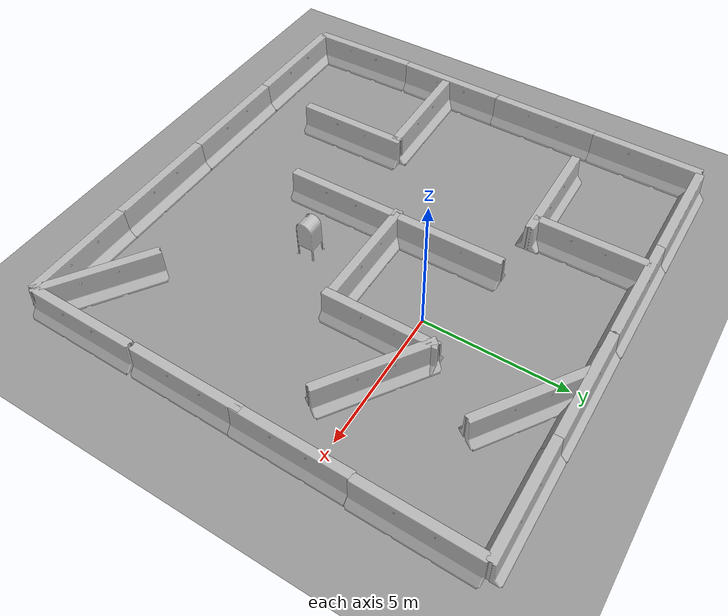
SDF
<sdf version="1.6">
 <world name="default">
  <light name="sun" type="directional">
   <pose>0 0 10 0 -0 0</pose>
   <diffuse>0.8 0.8 0.8 1</diffuse>
   <specular>0.2 0.2 0.2 1</specular>
   <attenuation>
    <range>1000</range>
    <constant>0.9</constant>
    <linear>0.01</linear>
    <quadratic>0.001</quadratic>
   </attenuation>
   <direction>0.5 0.1 -0.9</direction>
  </light>
  <scene><ambient>0.4 0.4 0.4 1</ambient><background>0.7 0.7 0.7 1</background><shadows>1</shadows></scene>
  <physics name="default_physics" default="0" type="ode">
   <max_step_size>0.01</max_step_size>
   <real_time_factor>1</real_time_factor>
   <real_time_update_rate>100</real_time_update_rate>
  </physics>
  <model name="ground_plane_0">
   <static>1</static>
   <link name="link">
    <collision name="collision">
     <geometry><plane><normal>0 0 1</normal><size>100 100</size></plane></geometry>
     <surface><friction><ode><mu>100</mu><mu2>50</mu2></ode></friction></surface>
    </collision>
    <visual name="visual">
     <cast_shadows>0</cast_shadows>
     <geometry><plane><normal>0 0 1</normal><size>100 100</size></plane></geometry>
     <material>
      <script><uri>file://media/materials/scripts/gazebo.material</uri><name>Gazebo/Grey</name></script>
     </material>
    </visual>
    <velocity_decay><linear>0</linear><angular>0</angular></velocity_decay>
   </link>
   <pose>0.497681 0 0 0 -0 0</pose>
  </model>
  <gravity>0 0 -9.8</gravity>
  <magnetic_field>6e-06 2.3e-05 -4.2e-05</magnetic_field>
  <atmosphere type="adiabatic"/>
  <spherical_coordinates>
   <surface_model>EARTH_WGS84</surface_model>
   <latitude_deg>0</latitude_deg>
   <longitude_deg>0</longitude_deg>
   <elevation>0</elevation>
   <heading_deg>0</heading_deg>
  </spherical_coordinates>
  <model name="jersey_barrier_0">
   <static>1</static>
   <link name="link">
    <visual name="visual">
     <geometry>
      <mesh><uri>model://jersey_barrier/meshes/jersey_barrier.dae</uri><scale>1 1 1</scale></mesh>
     </geometry>
    </visual>
    <collision name="upright">
     <pose>0 0 0.5715 0 -0 0</pose>
     <geometry><box><size>4.06542 0.3063 1.143</size></box></geometry>
    </collision>
    <collision name="base">
     <pose>0 0 0.032258 0 -0 0</pose>
     <geometry><box><size>4.06542 0.8107 0.064516</size></box></geometry>
    </collision>
    <collision name="base2">
     <pose>0 0 0.1 0 -0 0</pose>
     <geometry><box><size>4.06542 0.65 0.1</size></box></geometry>
    </collision>
    <collision name="base3">
     <pose>0 0 0.2 0 -0 0</pose>
     <geometry><box><size>4.06542 0.5 0.1</size></box></geometry>
    </collision>
    <collision name="left-angle">
     <pose>0 -0.224 0.2401 0.9 -0 0</pose>
     <geometry><box><size>4.06542 0.5 0.064516</size></box></geometry>
    </collision>
    <collision name="right-angle">
     <pose>0 0.224 0.2401 -0.9 0 0</pose>
     <geometry><box><size>4.06542 0.5 0.064516</size></box></geometry>
    </collision>
   </link>
   <pose>0.044913 -10.4917 0 0 -0 0</pose>
  </model>
  <model name="jersey_barrier_1">
   <static>1</static>
   <link name="link">
    <visual name="visual">
     <geometry>
      <mesh><uri>model://jersey_barrier/meshes/jersey_barrier.dae</uri><scale>1 1 1</scale></mesh>
     </geometry>
    </visual>
    <collision name="upright">
     <pose>0 0 0.5715 0 -0 0</pose>
     <geometry><box><size>4.06542 0.3063 1.143</size></box></geometry>
    </collision>
    <collision name="base">
     <pose>0 0 0.032258 0 -0 0</pose>
     <geometry><box><size>4.06542 0.8107 0.064516</size></box></geometry>
    </collision>
    <collision name="base2">
     <pose>0 0 0.1 0 -0 0</pose>
     <geometry><box><size>4.06542 0.65 0.1</size></box></geometry>
    </collision>
    <collision name="base3">
     <pose>0 0 0.2 0 -0 0</pose>
     <geometry><box><size>4.06542 0.5 0.1</size></box></geometry>
    </collision>
    <collision name="left-angle">
     <pose>0 -0.224 0.2401 0.9 -0 0</pose>
     <geometry><box><size>4.06542 0.5 0.064516</size></box></geometry>
    </collision>
    <collision name="right-angle">
     <pose>0 0.224 0.2401 -0.9 0 0</pose>
     <geometry><box><size>4.06542 0.5 0.064516</size></box></geometry>
    </collision>
   </link>
   <pose>3.93437 -10.4926 0 0 -0 0</pose>
  </model>
  <model name="jersey_barrier_1_clone_0">
   <static>1</static>
   <link name="link">
    <visual name="visual">
     <geometry>
      <mesh><uri>model://jersey_barrier/meshes/jersey_barrier.dae</uri><scale>1 1 1</scale></mesh>
     </geometry>
    </visual>
    <collision name="upright">
     <pose>0 0 0.5715 0 -0 0</pose>
     <geometry><box><size>4.06542 0.3063 1.143</size></box></geometry>
    </collision>
    <collision name="base">
     <pose>0 0 0.032258 0 -0 0</pose>
     <geometry><box><size>4.06542 0.8107 0.064516</size></box></geometry>
    </collision>
    <collision name="base2">
     <pose>0 0 0.1 0 -0 0</pose>
     <geometry><box><size>4.06542 0.65 0.1</size></box></geometry>
    </collision>
    <collision name="base3">
     <pose>0 0 0.2 0 -0 0</pose>
     <geometry><box><size>4.06542 0.5 0.1</size></box></geometry>
    </collision>
    <collision name="left-angle">
     <pose>0 -0.224 0.2401 0.9 -0 0</pose>
     <geometry><box><size>4.06542 0.5 0.064516</size></box></geometry>
    </collision>
    <collision name="right-angle">
     <pose>0 0.224 0.2401 -0.9 0 0</pose>
     <geometry><box><size>4.06542 0.5 0.064516</size></box></geometry>
    </collision>
   </link>
   <pose>-3.96775 -10.4974 0 0 -0 0</pose>
  </model>
  <model name="jersey_barrier_1_clone_1">
   <static>1</static>
   <link name="link">
    <visual name="visual">
     <geometry>
      <mesh><uri>model://jersey_barrier/meshes/jersey_barrier.dae</uri><scale>1 1 1</scale></mesh>
     </geometry>
    </visual>
    <collision name="upright">
     <pose>0 0 0.5715 0 -0 0</pose>
     <geometry><box><size>4.06542 0.3063 1.143</size></box></geometry>
    </collision>
    <collision name="base">
     <pose>0 0 0.032258 0 -0 0</pose>
     <geometry><box><size>4.06542 0.8107 0.064516</size></box></geometry>
    </collision>
    <collision name="base2">
     <pose>0 0 0.1 0 -0 0</pose>
     <geometry><box><size>4.06542 0.65 0.1</size></box></geometry>
    </collision>
    <collision name="base3">
     <pose>0 0 0.2 0 -0 0</pose>
     <geometry><box><size>4.06542 0.5 0.1</size></box></geometry>
    </collision>
    <collision name="left-angle">
     <pose>0 -0.224 0.2401 0.9 -0 0</pose>
     <geometry><box><size>4.06542 0.5 0.064516</size></box></geometry>
    </collision>
    <collision name="right-angle">
     <pose>0 0.224 0.2401 -0.9 0 0</pose>
     <geometry><box><size>4.06542 0.5 0.064516</size></box></geometry>
    </collision>
   </link>
   <pose>-7.97176 -10.4956 0 0 -0 0</pose>
  </model>
  <model name="jersey_barrier_1_clone_2">
   <static>1</static>
   <link name="link">
    <visual name="visual">
     <geometry>
      <mesh><uri>model://jersey_barrier/meshes/jersey_barrier.dae</uri><scale>1 1 1</scale></mesh>
     </geometry>
    </visual>
    <collision name="upright">
     <pose>0 0 0.5715 0 -0 0</pose>
     <geometry><box><size>4.06542 0.3063 1.143</size></box></geometry>
    </collision>
    <collision name="base">
     <pose>0 0 0.032258 0 -0 0</pose>
     <geometry><box><size>4.06542 0.8107 0.064516</size></box></geometry>
    </collision>
    <collision name="base2">
     <pose>0 0 0.1 0 -0 0</pose>
     <geometry><box><size>4.06542 0.65 0.1</size></box></geometry>
    </collision>
    <collision name="base3">
     <pose>0 0 0.2 0 -0 0</pose>
     <geometry><box><size>4.06542 0.5 0.1</size></box></geometry>
    </collision>
    <collision name="left-angle">
     <pose>0 -0.224 0.2401 0.9 -0 0</pose>
     <geometry><box><size>4.06542 0.5 0.064516</size></box></geometry>
    </collision>
    <collision name="right-angle">
     <pose>0 0.224 0.2401 -0.9 0 0</pose>
     <geometry><box><size>4.06542 0.5 0.064516</size></box></geometry>
    </collision>
   </link>
   <pose>-10.0738 -8.515 0 0 0 -1.55445</pose>
  </model>
  <model name="jersey_barrier_1_clone_2_clone">
   <static>1</static>
   <link name="link">
    <visual name="visual">
     <geometry>
      <mesh><uri>model://jersey_barrier/meshes/jersey_barrier.dae</uri><scale>1 1 1</scale></mesh>
     </geometry>
    </visual>
    <collision name="upright">
     <pose>0 0 0.5715 0 -0 0</pose>
     <geometry><box><size>4.06542 0.3063 1.143</size></box></geometry>
    </collision>
    <collision name="base">
     <pose>0 0 0.032258 0 -0 0</pose>
     <geometry><box><size>4.06542 0.8107 0.064516</size></box></geometry>
    </collision>
    <collision name="base2">
     <pose>0 0 0.1 0 -0 0</pose>
     <geometry><box><size>4.06542 0.65 0.1</size></box></geometry>
    </collision>
    <collision name="base3">
     <pose>0 0 0.2 0 -0 0</pose>
     <geometry><box><size>4.06542 0.5 0.1</size></box></geometry>
    </collision>
    <collision name="left-angle">
     <pose>0 -0.224 0.2401 0.9 -0 0</pose>
     <geometry><box><size>4.06542 0.5 0.064516</size></box></geometry>
    </collision>
    <collision name="right-angle">
     <pose>0 0.224 0.2401 -0.9 0 0</pose>
     <geometry><box><size>4.06542 0.5 0.064516</size></box></geometry>
    </collision>
   </link>
   <pose>-10.0721 -4.47903 0 0 0 -1.5814</pose>
  </model>
  <model name="jersey_barrier_1_clone_2_clone_0">
   <static>1</static>
   <link name="link">
    <visual name="visual">
     <geometry>
      <mesh><uri>model://jersey_barrier/meshes/jersey_barrier.dae</uri><scale>1 1 1</scale></mesh>
     </geometry>
    </visual>
    <collision name="upright">
     <pose>0 0 0.5715 0 -0 0</pose>
     <geometry><box><size>4.06542 0.3063 1.143</size></box></geometry>
    </collision>
    <collision name="base">
     <pose>0 0 0.032258 0 -0 0</pose>
     <geometry><box><size>4.06542 0.8107 0.064516</size></box></geometry>
    </collision>
    <collision name="base2">
     <pose>0 0 0.1 0 -0 0</pose>
     <geometry><box><size>4.06542 0.65 0.1</size></box></geometry>
    </collision>
    <collision name="base3">
     <pose>0 0 0.2 0 -0 0</pose>
     <geometry><box><size>4.06542 0.5 0.1</size></box></geometry>
    </collision>
    <collision name="left-angle">
     <pose>0 -0.224 0.2401 0.9 -0 0</pose>
     <geometry><box><size>4.06542 0.5 0.064516</size></box></geometry>
    </collision>
    <collision name="right-angle">
     <pose>0 0.224 0.2401 -0.9 0 0</pose>
     <geometry><box><size>4.06542 0.5 0.064516</size></box></geometry>
    </collision>
   </link>
   <pose>-10.0264 -0.525115 0 0 0 -1.5814</pose>
  </model>
  <model name="jersey_barrier_1_clone_2_clone_1">
   <static>1</static>
   <link name="link">
    <visual name="visual">
     <geometry>
      <mesh><uri>model://jersey_barrier/meshes/jersey_barrier.dae</uri><scale>1 1 1</scale></mesh>
     </geometry>
    </visual>
    <collision name="upright">
     <pose>0 0 0.5715 0 -0 0</pose>
     <geometry><box><size>4.06542 0.3063 1.143</size></box></geometry>
    </collision>
    <collision name="base">
     <pose>0 0 0.032258 0 -0 0</pose>
     <geometry><box><size>4.06542 0.8107 0.064516</size></box></geometry>
    </collision>
    <collision name="base2">
     <pose>0 0 0.1 0 -0 0</pose>
     <geometry><box><size>4.06542 0.65 0.1</size></box></geometry>
    </collision>
    <collision name="base3">
     <pose>0 0 0.2 0 -0 0</pose>
     <geometry><box><size>4.06542 0.5 0.1</size></box></geometry>
    </collision>
    <collision name="left-angle">
     <pose>0 -0.224 0.2401 0.9 -0 0</pose>
     <geometry><box><size>4.06542 0.5 0.064516</size></box></geometry>
    </collision>
    <collision name="right-angle">
     <pose>0 0.224 0.2401 -0.9 0 0</pose>
     <geometry><box><size>4.06542 0.5 0.064516</size></box></geometry>
    </collision>
   </link>
   <pose>-9.98287 3.46467 0 0 0 -1.5814</pose>
  </model>
  <model name="jersey_barrier_1_clone_1_clone">
   <static>1</static>
   <link name="link">
    <visual name="visual">
     <geometry>
      <mesh><uri>model://jersey_barrier/meshes/jersey_barrier.dae</uri><scale>1 1 1</scale></mesh>
     </geometry>
    </visual>
    <collision name="upright">
     <pose>0 0 0.5715 0 -0 0</pose>
     <geometry><box><size>4.06542 0.3063 1.143</size></box></geometry>
    </collision>
    <collision name="base">
     <pose>0 0 0.032258 0 -0 0</pose>
     <geometry><box><size>4.06542 0.8107 0.064516</size></box></geometry>
    </collision>
    <collision name="base2">
     <pose>0 0 0.1 0 -0 0</pose>
     <geometry><box><size>4.06542 0.65 0.1</size></box></geometry>
    </collision>
    <collision name="base3">
     <pose>0 0 0.2 0 -0 0</pose>
     <geometry><box><size>4.06542 0.5 0.1</size></box></geometry>
    </collision>
    <collision name="left-angle">
     <pose>0 -0.224 0.2401 0.9 -0 0</pose>
     <geometry><box><size>4.06542 0.5 0.064516</size></box></geometry>
    </collision>
    <collision name="right-angle">
     <pose>0 0.224 0.2401 -0.9 0 0</pose>
     <geometry><box><size>4.06542 0.5 0.064516</size></box></geometry>
    </collision>
   </link>
   <pose>-7.82894 5.43969 0 0 -0 0</pose>
  </model>
  <model name="jersey_barrier_1_clone_2_clone_3_clone_0">
   <static>1</static>
   <link name="link">
    <visual name="visual">
     <geometry>
      <mesh><uri>model://jersey_barrier/meshes/jersey_barrier.dae</uri><scale>1 1 1</scale></mesh>
     </geometry>
    </visual>
    <collision name="upright">
     <pose>0 0 0.5715 0 -0 0</pose>
     <geometry><box><size>4.06542 0.3063 1.143</size></box></geometry>
    </collision>
    <collision name="base">
     <pose>0 0 0.032258 0 -0 0</pose>
     <geometry><box><size>4.06542 0.8107 0.064516</size></box></geometry>
    </collision>
    <collision name="base2">
     <pose>0 0 0.1 0 -0 0</pose>
     <geometry><box><size>4.06542 0.65 0.1</size></box></geometry>
    </collision>
    <collision name="base3">
     <pose>0 0 0.2 0 -0 0</pose>
     <geometry><box><size>4.06542 0.5 0.1</size></box></geometry>
    </collision>
    <collision name="left-angle">
     <pose>0 -0.224 0.2401 0.9 -0 0</pose>
     <geometry><box><size>4.06542 0.5 0.064516</size></box></geometry>
    </collision>
    <collision name="right-angle">
     <pose>0 0.224 0.2401 -0.9 0 0</pose>
     <geometry><box><size>4.06542 0.5 0.064516</size></box></geometry>
    </collision>
   </link>
   <pose>5.9648 -4.34279 0 0 0 -1.5814</pose>
  </model>
  <model name="jersey_barrier_1_clone_2_clone_3_clone_1">
   <static>1</static>
   <link name="link">
    <visual name="visual">
     <geometry>
      <mesh><uri>model://jersey_barrier/meshes/jersey_barrier.dae</uri><scale>1 1 1</scale></mesh>
     </geometry>
    </visual>
    <collision name="upright">
     <pose>0 0 0.5715 0 -0 0</pose>
     <geometry><box><size>4.06542 0.3063 1.143</size></box></geometry>
    </collision>
    <collision name="base">
     <pose>0 0 0.032258 0 -0 0</pose>
     <geometry><box><size>4.06542 0.8107 0.064516</size></box></geometry>
    </collision>
    <collision name="base2">
     <pose>0 0 0.1 0 -0 0</pose>
     <geometry><box><size>4.06542 0.65 0.1</size></box></geometry>
    </collision>
    <collision name="base3">
     <pose>0 0 0.2 0 -0 0</pose>
     <geometry><box><size>4.06542 0.5 0.1</size></box></geometry>
    </collision>
    <collision name="left-angle">
     <pose>0 -0.224 0.2401 0.9 -0 0</pose>
     <geometry><box><size>4.06542 0.5 0.064516</size></box></geometry>
    </collision>
    <collision name="right-angle">
     <pose>0 0.224 0.2401 -0.9 0 0</pose>
     <geometry><box><size>4.06542 0.5 0.064516</size></box></geometry>
    </collision>
   </link>
   <pose>6.0186 -0.664457 0 0 0 -1.5814</pose>
  </model>
  <model name="jersey_barrier_1_clone_1_clone_clone_2_clone_0">
   <static>1</static>
   <link name="link">
    <visual name="visual">
     <geometry>
      <mesh><uri>model://jersey_barrier/meshes/jersey_barrier.dae</uri><scale>1 1 1</scale></mesh>
     </geometry>
    </visual>
    <collision name="upright">
     <pose>0 0 0.5715 0 -0 0</pose>
     <geometry><box><size>4.06542 0.3063 1.143</size></box></geometry>
    </collision>
    <collision name="base">
     <pose>0 0 0.032258 0 -0 0</pose>
     <geometry><box><size>4.06542 0.8107 0.064516</size></box></geometry>
    </collision>
    <collision name="base2">
     <pose>0 0 0.1 0 -0 0</pose>
     <geometry><box><size>4.06542 0.65 0.1</size></box></geometry>
    </collision>
    <collision name="base3">
     <pose>0 0 0.2 0 -0 0</pose>
     <geometry><box><size>4.06542 0.5 0.1</size></box></geometry>
    </collision>
    <collision name="left-angle">
     <pose>0 -0.224 0.2401 0.9 -0 0</pose>
     <geometry><box><size>4.06542 0.5 0.064516</size></box></geometry>
    </collision>
    <collision name="right-angle">
     <pose>0 0.224 0.2401 -0.9 0 0</pose>
     <geometry><box><size>4.06542 0.5 0.064516</size></box></geometry>
    </collision>
   </link>
   <pose>-0.833651 -2.57885 0 0 -0 0</pose>
  </model>
  <model name="jersey_barrier_1_clone_1_clone_clone_2_clone_0_clone_0">
   <static>1</static>
   <link name="link">
    <visual name="visual">
     <geometry>
      <mesh><uri>model://jersey_barrier/meshes/jersey_barrier.dae</uri><scale>1 1 1</scale></mesh>
     </geometry>
    </visual>
    <collision name="upright">
     <pose>0 0 0.5715 0 -0 0</pose>
     <geometry><box><size>4.06542 0.3063 1.143</size></box></geometry>
    </collision>
    <collision name="base">
     <pose>0 0 0.032258 0 -0 0</pose>
     <geometry><box><size>4.06542 0.8107 0.064516</size></box></geometry>
    </collision>
    <collision name="base2">
     <pose>0 0 0.1 0 -0 0</pose>
     <geometry><box><size>4.06542 0.65 0.1</size></box></geometry>
    </collision>
    <collision name="base3">
     <pose>0 0 0.2 0 -0 0</pose>
     <geometry><box><size>4.06542 0.5 0.1</size></box></geometry>
    </collision>
    <collision name="left-angle">
     <pose>0 -0.224 0.2401 0.9 -0 0</pose>
     <geometry><box><size>4.06542 0.5 0.064516</size></box></geometry>
    </collision>
    <collision name="right-angle">
     <pose>0 0.224 0.2401 -0.9 0 0</pose>
     <geometry><box><size>4.06542 0.5 0.064516</size></box></geometry>
    </collision>
   </link>
   <pose>4.20657 5.41196 0 0 -0 0</pose>
  </model>
  <model name="jersey_barrier_1_clone_1_clone_clone_2_clone_0_clone_1">
   <static>1</static>
   <link name="link">
    <visual name="visual">
     <geometry>
      <mesh><uri>model://jersey_barrier/meshes/jersey_barrier.dae</uri><scale>1 1 1</scale></mesh>
     </geometry>
    </visual>
    <collision name="upright">
     <pose>0 0 0.5715 0 -0 0</pose>
     <geometry><box><size>4.06542 0.3063 1.143</size></box></geometry>
    </collision>
    <collision name="base">
     <pose>0 0 0.032258 0 -0 0</pose>
     <geometry><box><size>4.06542 0.8107 0.064516</size></box></geometry>
    </collision>
    <collision name="base2">
     <pose>0 0 0.1 0 -0 0</pose>
     <geometry><box><size>4.06542 0.65 0.1</size></box></geometry>
    </collision>
    <collision name="base3">
     <pose>0 0 0.2 0 -0 0</pose>
     <geometry><box><size>4.06542 0.5 0.1</size></box></geometry>
    </collision>
    <collision name="left-angle">
     <pose>0 -0.224 0.2401 0.9 -0 0</pose>
     <geometry><box><size>4.06542 0.5 0.064516</size></box></geometry>
    </collision>
    <collision name="right-angle">
     <pose>0 0.224 0.2401 -0.9 0 0</pose>
     <geometry><box><size>4.06542 0.5 0.064516</size></box></geometry>
    </collision>
   </link>
   <pose>-3.85367 5.42903 0 0 -0 0</pose>
  </model>
  <model name="jersey_barrier_1_clone_1_clone_clone_2_clone_0_clone_2">
   <static>1</static>
   <link name="link">
    <visual name="visual">
     <geometry>
      <mesh><uri>model://jersey_barrier/meshes/jersey_barrier.dae</uri><scale>1 1 1</scale></mesh>
     </geometry>
    </visual>
    <collision name="upright">
     <pose>0 0 0.5715 0 -0 0</pose>
     <geometry><box><size>4.06542 0.3063 1.143</size></box></geometry>
    </collision>
    <collision name="base">
     <pose>0 0 0.032258 0 -0 0</pose>
     <geometry><box><size>4.06542 0.8107 0.064516</size></box></geometry>
    </collision>
    <collision name="base2">
     <pose>0 0 0.1 0 -0 0</pose>
     <geometry><box><size>4.06542 0.65 0.1</size></box></geometry>
    </collision>
    <collision name="base3">
     <pose>0 0 0.2 0 -0 0</pose>
     <geometry><box><size>4.06542 0.5 0.1</size></box></geometry>
    </collision>
    <collision name="left-angle">
     <pose>0 -0.224 0.2401 0.9 -0 0</pose>
     <geometry><box><size>4.06542 0.5 0.064516</size></box></geometry>
    </collision>
    <collision name="right-angle">
     <pose>0 0.224 0.2401 -0.9 0 0</pose>
     <geometry><box><size>4.06542 0.5 0.064516</size></box></geometry>
    </collision>
   </link>
   <pose>0.204823 5.4248 0 0 -0 0</pose>
  </model>
  <model name="jersey_barrier_1_clone_2_clone_2_clone">
   <static>1</static>
   <link name="link">
    <visual name="visual">
     <geometry>
      <mesh><uri>model://jersey_barrier/meshes/jersey_barrier.dae</uri><scale>1 1 1</scale></mesh>
     </geometry>
    </visual>
    <collision name="upright">
     <pose>0 0 0.5715 0 -0 0</pose>
     <geometry><box><size>4.06542 0.3063 1.143</size></box></geometry>
    </collision>
    <collision name="base">
     <pose>0 0 0.032258 0 -0 0</pose>
     <geometry><box><size>4.06542 0.8107 0.064516</size></box></geometry>
    </collision>
    <collision name="base2">
     <pose>0 0 0.1 0 -0 0</pose>
     <geometry><box><size>4.06542 0.65 0.1</size></box></geometry>
    </collision>
    <collision name="base3">
     <pose>0 0 0.2 0 -0 0</pose>
     <geometry><box><size>4.06542 0.5 0.1</size></box></geometry>
    </collision>
    <collision name="left-angle">
     <pose>0 -0.224 0.2401 0.9 -0 0</pose>
     <geometry><box><size>4.06542 0.5 0.064516</size></box></geometry>
    </collision>
    <collision name="right-angle">
     <pose>0 0.224 0.2401 -0.9 0 0</pose>
     <geometry><box><size>4.06542 0.5 0.064516</size></box></geometry>
    </collision>
   </link>
   <pose>6.10803 3.31897 0 0 0 -1.5814</pose>
  </model>
  <model name="jersey_barrier_1_clone_2_clone_2_clone_0">
   <static>1</static>
   <link name="link">
    <visual name="visual">
     <geometry>
      <mesh><uri>model://jersey_barrier/meshes/jersey_barrier.dae</uri><scale>1 1 1</scale></mesh>
     </geometry>
    </visual>
    <collision name="upright">
     <pose>0 0 0.5715 0 -0 0</pose>
     <geometry><box><size>4.06542 0.3063 1.143</size></box></geometry>
    </collision>
    <collision name="base">
     <pose>0 0 0.032258 0 -0 0</pose>
     <geometry><box><size>4.06542 0.8107 0.064516</size></box></geometry>
    </collision>
    <collision name="base2">
     <pose>0 0 0.1 0 -0 0</pose>
     <geometry><box><size>4.06542 0.65 0.1</size></box></geometry>
    </collision>
    <collision name="base3">
     <pose>0 0 0.2 0 -0 0</pose>
     <geometry><box><size>4.06542 0.5 0.1</size></box></geometry>
    </collision>
    <collision name="left-angle">
     <pose>0 -0.224 0.2401 0.9 -0 0</pose>
     <geometry><box><size>4.06542 0.5 0.064516</size></box></geometry>
    </collision>
    <collision name="right-angle">
     <pose>0 0.224 0.2401 -0.9 0 0</pose>
     <geometry><box><size>4.06542 0.5 0.064516</size></box></geometry>
    </collision>
   </link>
   <pose>5.9329 -8.48199 0 0 0 -1.5814</pose>
  </model>
  <model name="jersey_barrier_clone_0">
   <static>1</static>
   <link name="link">
    <visual name="visual">
     <geometry>
      <mesh><uri>model://jersey_barrier/meshes/jersey_barrier.dae</uri><scale>1 1 1</scale></mesh>
     </geometry>
    </visual>
    <collision name="upright">
     <pose>0 0 0.5715 0 -0 0</pose>
     <geometry><box><size>4.06542 0.3063 1.143</size></box></geometry>
    </collision>
    <collision name="base">
     <pose>0 0 0.032258 0 -0 0</pose>
     <geometry><box><size>4.06542 0.8107 0.064516</size></box></geometry>
    </collision>
    <collision name="base2">
     <pose>0 0 0.1 0 -0 0</pose>
     <geometry><box><size>4.06542 0.65 0.1</size></box></geometry>
    </collision>
    <collision name="base3">
     <pose>0 0 0.2 0 -0 0</pose>
     <geometry><box><size>4.06542 0.5 0.1</size></box></geometry>
    </collision>
    <collision name="left-angle">
     <pose>0 -0.224 0.2401 0.9 -0 0</pose>
     <geometry><box><size>4.06542 0.5 0.064516</size></box></geometry>
    </collision>
    <collision name="right-angle">
     <pose>0 0.224 0.2401 -0.9 0 0</pose>
     <geometry><box><size>4.06542 0.5 0.064516</size></box></geometry>
    </collision>
    <velocity_decay><linear>0</linear><angular>0</angular></velocity_decay>
   </link>
   <pose>-7.87945 -4.60001 0 0 -0 0.025873</pose>
  </model>
  <model name="jersey_barrier_1_clone_1_clone_clone_2_clone_clone">
   <static>1</static>
   <link name="link">
    <visual name="visual">
     <geometry>
      <mesh><uri>model://jersey_barrier/meshes/jersey_barrier.dae</uri><scale>1 1 1</scale></mesh>
     </geometry>
    </visual>
    <collision name="upright">
     <pose>0 0 0.5715 0 -0 0</pose>
     <geometry><box><size>4.06542 0.3063 1.143</size></box></geometry>
    </collision>
    <collision name="base">
     <pose>0 0 0.032258 0 -0 0</pose>
     <geometry><box><size>4.06542 0.8107 0.064516</size></box></geometry>
    </collision>
    <collision name="base2">
     <pose>0 0 0.1 0 -0 0</pose>
     <geometry><box><size>4.06542 0.65 0.1</size></box></geometry>
    </collision>
    <collision name="base3">
     <pose>0 0 0.2 0 -0 0</pose>
     <geometry><box><size>4.06542 0.5 0.1</size></box></geometry>
    </collision>
    <collision name="left-angle">
     <pose>0 -0.224 0.2401 0.9 -0 0</pose>
     <geometry><box><size>4.06542 0.5 0.064516</size></box></geometry>
    </collision>
    <collision name="right-angle">
     <pose>0 0.224 0.2401 -0.9 0 0</pose>
     <geometry><box><size>4.06542 0.5 0.064516</size></box></geometry>
    </collision>
   </link>
   <pose>-2.61262 -0.626881 0 0 0 -1.56872</pose>
  </model>
  <model name="jersey_barrier_1_clone_1_clone_clone_2_clone_clone_clone">
   <static>1</static>
   <link name="link">
    <visual name="visual">
     <geometry>
      <mesh><uri>model://jersey_barrier/meshes/jersey_barrier.dae</uri><scale>1 1 1</scale></mesh>
     </geometry>
    </visual>
    <collision name="upright">
     <pose>0 0 0.5715 0 -0 0</pose>
     <geometry><box><size>4.06542 0.3063 1.143</size></box></geometry>
    </collision>
    <collision name="base">
     <pose>0 0 0.032258 0 -0 0</pose>
     <geometry><box><size>4.06542 0.8107 0.064516</size></box></geometry>
    </collision>
    <collision name="base2">
     <pose>0 0 0.1 0 -0 0</pose>
     <geometry><box><size>4.06542 0.65 0.1</size></box></geometry>
    </collision>
    <collision name="base3">
     <pose>0 0 0.2 0 -0 0</pose>
     <geometry><box><size>4.06542 0.5 0.1</size></box></geometry>
    </collision>
    <collision name="left-angle">
     <pose>0 -0.224 0.2401 0.9 -0 0</pose>
     <geometry><box><size>4.06542 0.5 0.064516</size></box></geometry>
    </collision>
    <collision name="right-angle">
     <pose>0 0.224 0.2401 -0.9 0 0</pose>
     <geometry><box><size>4.06542 0.5 0.064516</size></box></geometry>
    </collision>
   </link>
   <pose>-5.87437 -6.37913 0 0 0 -1.56872</pose>
  </model>
  <model name="jersey_barrier_1_clone_1_clone_clone_2_clone_clone_clone_0">
   <static>1</static>
   <link name="link">
    <visual name="visual">
     <geometry>
      <mesh><uri>model://jersey_barrier/meshes/jersey_barrier.dae</uri><scale>1 1 1</scale></mesh>
     </geometry>
    </visual>
    <collision name="upright">
     <pose>0 0 0.5715 0 -0 0</pose>
     <geometry><box><size>4.06542 0.3063 1.143</size></box></geometry>
    </collision>
    <collision name="base">
     <pose>0 0 0.032258 0 -0 0</pose>
     <geometry><box><size>4.06542 0.8107 0.064516</size></box></geometry>
    </collision>
    <collision name="base2">
     <pose>0 0 0.1 0 -0 0</pose>
     <geometry><box><size>4.06542 0.65 0.1</size></box></geometry>
    </collision>
    <collision name="base3">
     <pose>0 0 0.2 0 -0 0</pose>
     <geometry><box><size>4.06542 0.5 0.1</size></box></geometry>
    </collision>
    <collision name="left-angle">
     <pose>0 -0.224 0.2401 0.9 -0 0</pose>
     <geometry><box><size>4.06542 0.5 0.064516</size></box></geometry>
    </collision>
    <collision name="right-angle">
     <pose>0 0.224 0.2401 -0.9 0 0</pose>
     <geometry><box><size>4.06542 0.5 0.064516</size></box></geometry>
    </collision>
   </link>
   <pose>-2.63232 -4.67409 0 0 0 -1.56872</pose>
  </model>
  <model name="jersey_barrier_1_clone_1_clone_clone_2_clone_clone_clone_1">
   <static>1</static>
   <link name="link">
    <visual name="visual">
     <geometry>
      <mesh><uri>model://jersey_barrier/meshes/jersey_barrier.dae</uri><scale>1 1 1</scale></mesh>
     </geometry>
    </visual>
    <collision name="upright">
     <pose>0 0 0.5715 0 -0 0</pose>
     <geometry><box><size>4.06542 0.3063 1.143</size></box></geometry>
    </collision>
    <collision name="base">
     <pose>0 0 0.032258 0 -0 0</pose>
     <geometry><box><size>4.06542 0.8107 0.064516</size></box></geometry>
    </collision>
    <collision name="base2">
     <pose>0 0 0.1 0 -0 0</pose>
     <geometry><box><size>4.06542 0.65 0.1</size></box></geometry>
    </collision>
    <collision name="base3">
     <pose>0 0 0.2 0 -0 0</pose>
     <geometry><box><size>4.06542 0.5 0.1</size></box></geometry>
    </collision>
    <collision name="left-angle">
     <pose>0 -0.224 0.2401 0.9 -0 0</pose>
     <geometry><box><size>4.06542 0.5 0.064516</size></box></geometry>
    </collision>
    <collision name="right-angle">
     <pose>0 0.224 0.2401 -0.9 0 0</pose>
     <geometry><box><size>4.06542 0.5 0.064516</size></box></geometry>
    </collision>
   </link>
   <pose>1.30835 -0.775591 0 0 0 -1.56872</pose>
  </model>
  <model name="jersey_barrier_1_clone_1_clone_clone_2_clone_clone_clone_2">
   <static>1</static>
   <link name="link">
    <visual name="visual">
     <geometry>
      <mesh><uri>model://jersey_barrier/meshes/jersey_barrier.dae</uri><scale>1 1 1</scale></mesh>
     </geometry>
    </visual>
    <collision name="upright">
     <pose>0 0 0.5715 0 -0 0</pose>
     <geometry><box><size>4.06542 0.3063 1.143</size></box></geometry>
    </collision>
    <collision name="base">
     <pose>0 0 0.032258 0 -0 0</pose>
     <geometry><box><size>4.06542 0.8107 0.064516</size></box></geometry>
    </collision>
    <collision name="base2">
     <pose>0 0 0.1 0 -0 0</pose>
     <geometry><box><size>4.06542 0.65 0.1</size></box></geometry>
    </collision>
    <collision name="base3">
     <pose>0 0 0.2 0 -0 0</pose>
     <geometry><box><size>4.06542 0.5 0.1</size></box></geometry>
    </collision>
    <collision name="left-angle">
     <pose>0 -0.224 0.2401 0.9 -0 0</pose>
     <geometry><box><size>4.06542 0.5 0.064516</size></box></geometry>
    </collision>
    <collision name="right-angle">
     <pose>0 0.224 0.2401 -0.9 0 0</pose>
     <geometry><box><size>4.06542 0.5 0.064516</size></box></geometry>
    </collision>
   </link>
   <pose>-4.94742 3.41321 0 0 0 -1.56872</pose>
  </model>
  <model name="jersey_barrier_1_clone_1_clone_clone_2_clone_clone_clone_3">
   <static>1</static>
   <link name="link">
    <visual name="visual">
     <geometry>
      <mesh><uri>model://jersey_barrier/meshes/jersey_barrier.dae</uri><scale>1 1 1</scale></mesh>
     </geometry>
    </visual>
    <collision name="upright">
     <pose>0 0 0.5715 0 -0 0</pose>
     <geometry><box><size>4.06542 0.3063 1.143</size></box></geometry>
    </collision>
    <collision name="base">
     <pose>0 0 0.032258 0 -0 0</pose>
     <geometry><box><size>4.06542 0.8107 0.064516</size></box></geometry>
    </collision>
    <collision name="base2">
     <pose>0 0 0.1 0 -0 0</pose>
     <geometry><box><size>4.06542 0.65 0.1</size></box></geometry>
    </collision>
    <collision name="base3">
     <pose>0 0 0.2 0 -0 0</pose>
     <geometry><box><size>4.06542 0.5 0.1</size></box></geometry>
    </collision>
    <collision name="left-angle">
     <pose>0 -0.224 0.2401 0.9 -0 0</pose>
     <geometry><box><size>4.06542 0.5 0.064516</size></box></geometry>
    </collision>
    <collision name="right-angle">
     <pose>0 0.224 0.2401 -0.9 0 0</pose>
     <geometry><box><size>4.06542 0.5 0.064516</size></box></geometry>
    </collision>
   </link>
   <pose>-6.40528 1.44528 0 0 -0 0.016714</pose>
  </model>
  <model name="postbox">
   <static>1</static>
   <link name="link">
    <collision name="collision">
     <geometry><mesh><uri>model://postbox/meshes/postbox.dae</uri><scale>1 1 1</scale></mesh></geometry>
    </collision>
    <visual name="visual">
     <geometry><mesh><uri>model://postbox/meshes/postbox.dae</uri><scale>1 1 1</scale></mesh></geometry>
    </visual>
   </link>
   <pose>-0.603325 -4.69123 0 0 -0 0</pose>
  </model>
  <model name="jersey_barrier_1_clone_1_clone_clone_2_clone_clone_clone_clone">
   <static>1</static>
   <link name="link">
    <visual name="visual">
     <geometry>
      <mesh><uri>model://jersey_barrier/meshes/jersey_barrier.dae</uri><scale>1 1 1</scale></mesh>
     </geometry>
    </visual>
    <collision name="upright">
     <pose>0 0 0.5715 0 -0 0</pose>
     <geometry><box><size>4.06542 0.3063 1.143</size></box></geometry>
    </collision>
    <collision name="base">
     <pose>0 0 0.032258 0 -0 0</pose>
     <geometry><box><size>4.06542 0.8107 0.064516</size></box></geometry>
    </collision>
    <collision name="base2">
     <pose>0 0 0.1 0 -0 0</pose>
     <geometry><box><size>4.06542 0.65 0.1</size></box></geometry>
    </collision>
    <collision name="base3">
     <pose>0 0 0.2 0 -0 0</pose>
     <geometry><box><size>4.06542 0.5 0.1</size></box></geometry>
    </collision>
    <collision name="left-angle">
     <pose>0 -0.224 0.2401 0.9 -0 0</pose>
     <geometry><box><size>4.06542 0.5 0.064516</size></box></geometry>
    </collision>
    <collision name="right-angle">
     <pose>0 0.224 0.2401 -0.9 0 0</pose>
     <geometry><box><size>4.06542 0.5 0.064516</size></box></geometry>
    </collision>
   </link>
   <pose>4.33762 -9.33328 0 0 0 -0.603838</pose>
  </model>
  <model name="jersey_barrier_1_clone_1_clone_clone_2_clone_clone_clone_clone_clone">
   <static>1</static>
   <link name="link">
    <visual name="visual">
     <geometry>
      <mesh><uri>model://jersey_barrier/meshes/jersey_barrier.dae</uri><scale>1 1 1</scale></mesh>
     </geometry>
    </visual>
    <collision name="upright">
     <pose>0 0 0.5715 0 -0 0</pose>
     <geometry><box><size>4.06542 0.3063 1.143</size></box></geometry>
    </collision>
    <collision name="base">
     <pose>0 0 0.032258 0 -0 0</pose>
     <geometry><box><size>4.06542 0.8107 0.064516</size></box></geometry>
    </collision>
    <collision name="base2">
     <pose>0 0 0.1 0 -0 0</pose>
     <geometry><box><size>4.06542 0.65 0.1</size></box></geometry>
    </collision>
    <collision name="base3">
     <pose>0 0 0.2 0 -0 0</pose>
     <geometry><box><size>4.06542 0.5 0.1</size></box></geometry>
    </collision>
    <collision name="left-angle">
     <pose>0 -0.224 0.2401 0.9 -0 0</pose>
     <geometry><box><size>4.06542 0.5 0.064516</size></box></geometry>
    </collision>
    <collision name="right-angle">
     <pose>0 0.224 0.2401 -0.9 0 0</pose>
     <geometry><box><size>4.06542 0.5 0.064516</size></box></geometry>
    </collision>
   </link>
   <pose>2.80445 -0.04034 0 0 0 -0.603838</pose>
  </model>
  <model name="jersey_barrier_1_clone_1_clone_clone_2_clone_clone_clone_clone_clone_0">
   <static>1</static>
   <link name="link">
    <visual name="visual">
     <geometry>
      <mesh><uri>model://jersey_barrier/meshes/jersey_barrier.dae</uri><scale>1 1 1</scale></mesh>
     </geometry>
    </visual>
    <collision name="upright">
     <pose>0 0 0.5715 0 -0 0</pose>
     <geometry><box><size>4.06542 0.3063 1.143</size></box></geometry>
    </collision>
    <collision name="base">
     <pose>0 0 0.032258 0 -0 0</pose>
     <geometry><box><size>4.06542 0.8107 0.064516</size></box></geometry>
    </collision>
    <collision name="base2">
     <pose>0 0 0.1 0 -0 0</pose>
     <geometry><box><size>4.06542 0.65 0.1</size></box></geometry>
    </collision>
    <collision name="base3">
     <pose>0 0 0.2 0 -0 0</pose>
     <geometry><box><size>4.06542 0.5 0.1</size></box></geometry>
    </collision>
    <collision name="left-angle">
     <pose>0 -0.224 0.2401 0.9 -0 0</pose>
     <geometry><box><size>4.06542 0.5 0.064516</size></box></geometry>
    </collision>
    <collision name="right-angle">
     <pose>0 0.224 0.2401 -0.9 0 0</pose>
     <geometry><box><size>4.06542 0.5 0.064516</size></box></geometry>
    </collision>
   </link>
   <pose>1.3627 4.23209 0 0 0 -0.603838</pose>
  </model>
 </world>
</sdf>
